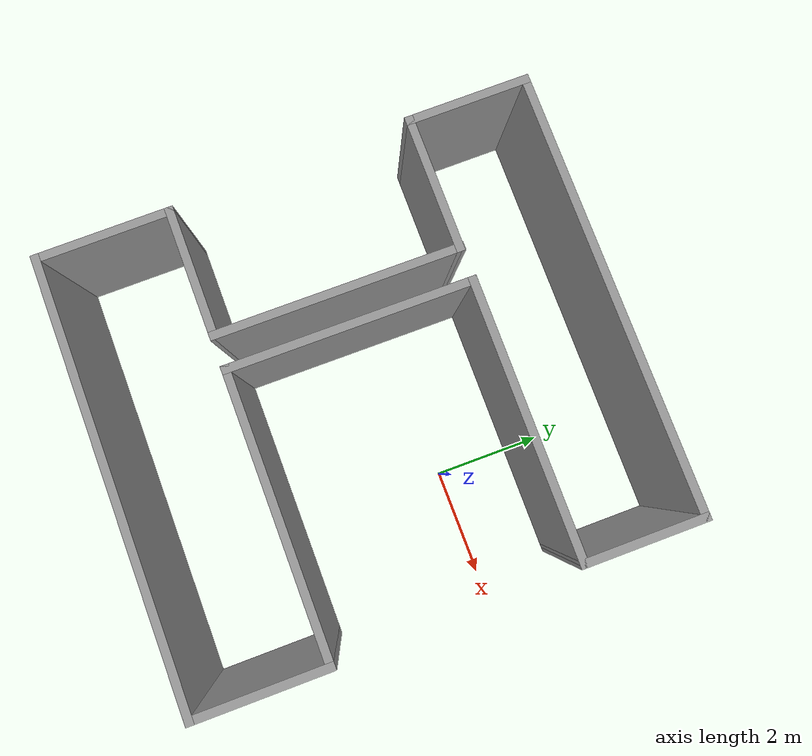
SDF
<?xml version='1.0'?>
<sdf version='1.7'>
  <model name='narrow_corridor'>
    <pose>-1.861 -0.865 0 0 -0 0</pose>
    <link name='Wall_0'>
      <collision name='Wall_0_Collision'>
        <geometry>
          <box>
            <size>2.5 0.15 2.5</size>
          </box>
        </geometry>
        <pose>0 0 1.25 0 -0 0</pose>
      </collision>
      <visual name='Wall_0_Visual'>
        <pose>0 0 1.25 0 -0 0</pose>
        <geometry>
          <box>
            <size>2.5 0.15 2.5</size>
          </box>
        </geometry>
        <material>
          <script>
            <uri>file://media/materials/scripts/gazebo.material</uri>
            <name>Gazebo/Grey</name>
          </script>
          <ambient>1 1 1 1</ambient>
        </material>
        <meta>
          <layer>0</layer>
        </meta>
      </visual>
      <pose>-3.879 -3.21 0 0 -0 -1.5708</pose>
    </link>
    <link name='Wall_1'>
      <collision name='Wall_1_Collision'>
        <geometry>
          <box>
            <size>8 0.15 2.5</size>
          </box>
        </geometry>
        <pose>0 0 1.25 0 -0 0</pose>
      </collision>
      <visual name='Wall_1_Visual'>
        <pose>0 0 1.25 0 -0 0</pose>
        <geometry>
          <box>
            <size>8 0.15 2.5</size>
          </box>
        </geometry>
        <material>
          <script>
            <uri>file://media/materials/scripts/gazebo.material</uri>
            <name>Gazebo/Grey</name>
          </script>
          <ambient>1 1 1 1</ambient>
        </material>
        <meta>
          <layer>0</layer>
        </meta>
      </visual>
      <pose>0.046 -4.385 0 0 -0 0</pose>
    </link>
    <link name='Wall_10'>
      <collision name='Wall_10_Collision'>
        <geometry>
          <box>
            <size>4.48005 0.15 2.5</size>
          </box>
        </geometry>
        <pose>0 0 1.25 0 -0 0</pose>
      </collision>
      <visual name='Wall_10_Visual'>
        <pose>0 0 1.25 0 -0 0</pose>
        <geometry>
          <box>
            <size>4.48005 0.15 2.5</size>
          </box>
        </geometry>
        <material>
          <script>
            <uri>file://media/materials/scripts/gazebo.material</uri>
            <name>Gazebo/Grey</name>
          </script>
          <ambient>1 1 1 1</ambient>
        </material>
        <meta>
          <layer>0</layer>
        </meta>
      </visual>
      <pose>-1.031 0.13 0 0 -0 -1.57542</pose>
    </link>
    <link name='Wall_11'>
      <collision name='Wall_11_Collision'>
        <geometry>
          <box>
            <size>5.162 0.15 2.5</size>
          </box>
        </geometry>
        <pose>0 0 1.25 0 -0 0</pose>
      </collision>
      <visual name='Wall_11_Visual'>
        <pose>0 0 1.25 0 -0 0</pose>
        <geometry>
          <box>
            <size>5.162 0.15 2.5</size>
          </box>
        </geometry>
        <material>
          <script>
            <uri>file://media/materials/scripts/gazebo.material</uri>
            <name>Gazebo/Grey</name>
          </script>
          <ambient>1 1 1 1</ambient>
        </material>
        <meta>
          <layer>0</layer>
        </meta>
      </visual>
      <pose>1.465 -2.035 0 0 -0 0</pose>
    </link>
    <link name='Wall_13'>
      <collision name='Wall_13_Collision'>
        <geometry>
          <box>
            <size>2.5 0.15 2.5</size>
          </box>
        </geometry>
        <pose>0 0 1.25 0 -0 0</pose>
      </collision>
      <visual name='Wall_13_Visual'>
        <pose>0 0 1.25 0 -0 0</pose>
        <geometry>
          <box>
            <size>2.5 0.15 2.5</size>
          </box>
        </geometry>
        <material>
          <script>
            <uri>file://media/materials/scripts/gazebo.material</uri>
            <name>Gazebo/Grey</name>
          </script>
          <ambient>1 1 1 1</ambient>
        </material>
        <meta>
          <layer>0</layer>
        </meta>
      </visual>
      <pose>-2.796 2.285 0 0 -0 3.14159</pose>
    </link>
    <link name='Wall_14'>
      <collision name='Wall_14_Collision'>
        <geometry>
          <box>
            <size>2.25 0.15 2.5</size>
          </box>
        </geometry>
        <pose>0 0 1.25 0 -0 0</pose>
      </collision>
      <visual name='Wall_14_Visual'>
        <pose>0 0 1.25 0 -0 0</pose>
        <geometry>
          <box>
            <size>2.25 0.15 2.5</size>
          </box>
        </geometry>
        <material>
          <script>
            <uri>file://media/materials/scripts/gazebo.material</uri>
            <name>Gazebo/Grey</name>
          </script>
          <ambient>1 1 1 1</ambient>
        </material>
        <meta>
          <layer>0</layer>
        </meta>
      </visual>
      <pose>-3.971 3.335 0 0 -0 1.5708</pose>
    </link>
    <link name='Wall_15'>
      <collision name='Wall_15_Collision'>
        <geometry>
          <box>
            <size>8 0.15 2.5</size>
          </box>
        </geometry>
        <pose>0 0 1.25 0 -0 0</pose>
      </collision>
      <visual name='Wall_15_Visual'>
        <pose>0 0 1.25 0 -0 0</pose>
        <geometry>
          <box>
            <size>8 0.15 2.5</size>
          </box>
        </geometry>
        <material>
          <script>
            <uri>file://media/materials/scripts/gazebo.material</uri>
            <name>Gazebo/Grey</name>
          </script>
          <ambient>1 1 1 1</ambient>
        </material>
        <meta>
          <layer>0</layer>
        </meta>
      </visual>
      <pose>-0.046 4.385 0 0 -0 0</pose>
    </link>
    <link name='Wall_16'>
      <collision name='Wall_16_Collision'>
        <geometry>
          <box>
            <size>2.25 0.15 2.5</size>
          </box>
        </geometry>
        <pose>0 0 1.25 0 -0 0</pose>
      </collision>
      <visual name='Wall_16_Visual'>
        <pose>0 0 1.25 0 -0 0</pose>
        <geometry>
          <box>
            <size>2.25 0.15 2.5</size>
          </box>
        </geometry>
        <material>
          <script>
            <uri>file://media/materials/scripts/gazebo.material</uri>
            <name>Gazebo/Grey</name>
          </script>
          <ambient>1 1 1 1</ambient>
        </material>
        <meta>
          <layer>0</layer>
        </meta>
      </visual>
      <pose>3.879 3.335 0 0 -0 -1.5708</pose>
    </link>
    <link name='Wall_17'>
      <collision name='Wall_17_Collision'>
        <geometry>
          <box>
            <size>5.05001 0.15 2.5</size>
          </box>
        </geometry>
        <pose>0 0 1.25 0 -0 0</pose>
      </collision>
      <visual name='Wall_17_Visual'>
        <pose>0 0 1.25 0 -0 0</pose>
        <geometry>
          <box>
            <size>5.05001 0.15 2.5</size>
          </box>
        </geometry>
        <material>
          <script>
            <uri>file://media/materials/scripts/gazebo.material</uri>
            <name>Gazebo/Grey</name>
          </script>
          <ambient>1 1 1 1</ambient>
        </material>
        <meta>
          <layer>0</layer>
        </meta>
      </visual>
      <pose>1.429 2.29 0 0 -0 3.13955</pose>
    </link>
    <link name='Wall_2'>
      <collision name='Wall_2_Collision'>
        <geometry>
          <box>
            <size>2.5 0.15 2.5</size>
          </box>
        </geometry>
        <pose>0 0 1.25 0 -0 0</pose>
      </collision>
      <visual name='Wall_2_Visual'>
        <pose>0 0 1.25 0 -0 0</pose>
        <geometry>
          <box>
            <size>2.5 0.15 2.5</size>
          </box>
        </geometry>
        <material>
          <script>
            <uri>file://media/materials/scripts/gazebo.material</uri>
            <name>Gazebo/Grey</name>
          </script>
          <ambient>1 1 1 1</ambient>
        </material>
        <meta>
          <layer>0</layer>
        </meta>
      </visual>
      <pose>3.971 -3.21 0 0 -0 1.5708</pose>
    </link>
    <link name='Wall_5'>
      <collision name='Wall_5_Collision'>
        <geometry>
          <box>
            <size>2.388 0.15 2.5</size>
          </box>
        </geometry>
        <pose>0 0 1.25 0 -0 0</pose>
      </collision>
      <visual name='Wall_5_Visual'>
        <pose>0 0 1.25 0 -0 0</pose>
        <geometry>
          <box>
            <size>2.388 0.15 2.5</size>
          </box>
        </geometry>
        <material>
          <script>
            <uri>file://media/materials/scripts/gazebo.material</uri>
            <name>Gazebo/Grey</name>
          </script>
          <ambient>1 1 1 1</ambient>
        </material>
        <meta>
          <layer>0</layer>
        </meta>
      </visual>
      <pose>-2.76 -2.035 0 0 -0 0</pose>
    </link>
    <link name='Wall_6'>
      <collision name='Wall_6_Collision'>
        <geometry>
          <box>
            <size>4.48005 0.15 2.5</size>
          </box>
        </geometry>
        <pose>0 0 1.25 0 -0 0</pose>
      </collision>
      <visual name='Wall_6_Visual'>
        <pose>0 0 1.25 0 -0 0</pose>
        <geometry>
          <box>
            <size>4.48005 0.15 2.5</size>
          </box>
        </geometry>
        <material>
          <script>
            <uri>file://media/materials/scripts/gazebo.material</uri>
            <name>Gazebo/Grey</name>
          </script>
          <ambient>1 1 1 1</ambient>
        </material>
        <meta>
          <layer>0</layer>
        </meta>
      </visual>
      <pose>-1.631 0.13 0 0 -0 1.56618</pose>
    </link>
    <static>1</static>
  </model>
</sdf>
